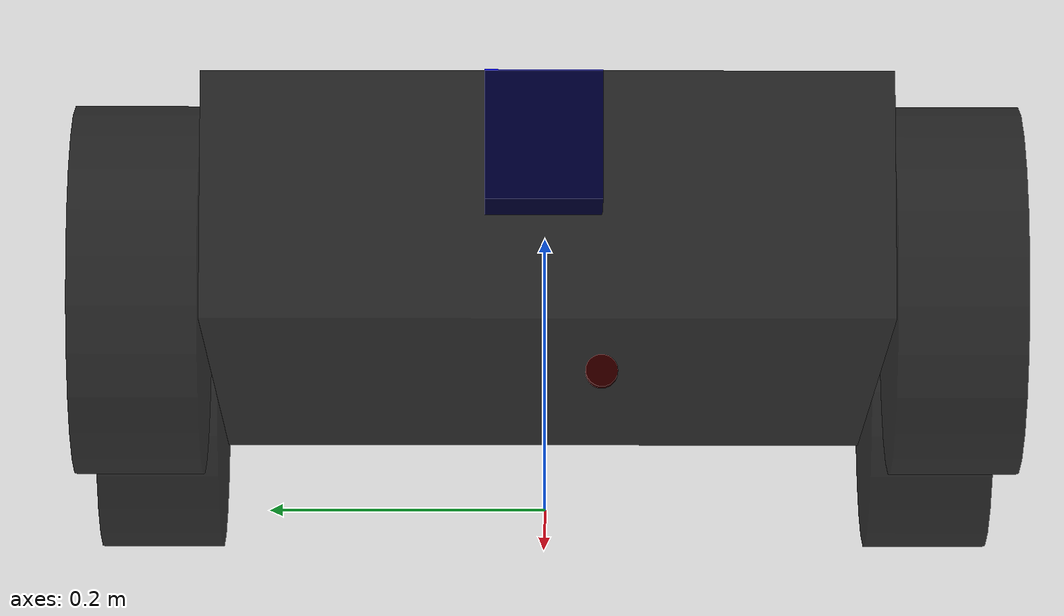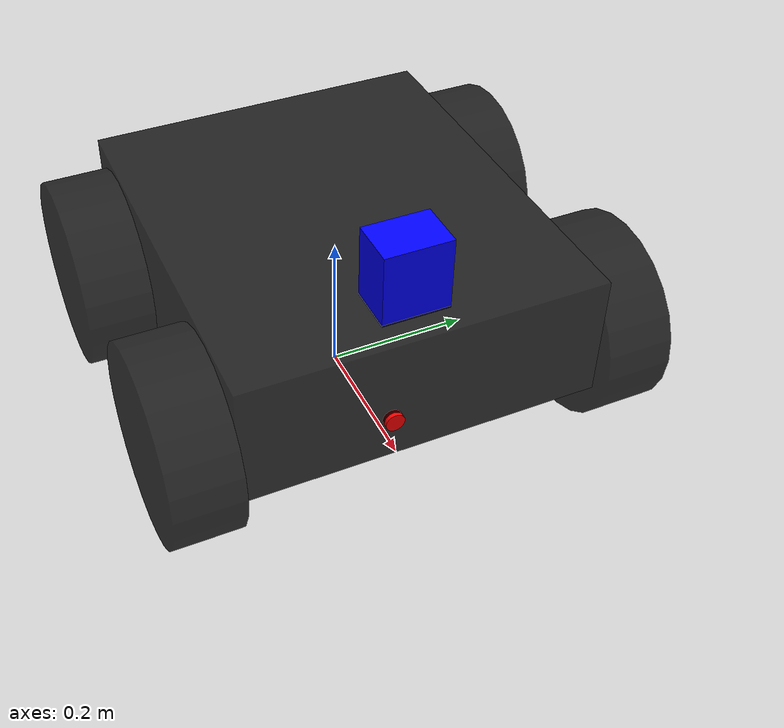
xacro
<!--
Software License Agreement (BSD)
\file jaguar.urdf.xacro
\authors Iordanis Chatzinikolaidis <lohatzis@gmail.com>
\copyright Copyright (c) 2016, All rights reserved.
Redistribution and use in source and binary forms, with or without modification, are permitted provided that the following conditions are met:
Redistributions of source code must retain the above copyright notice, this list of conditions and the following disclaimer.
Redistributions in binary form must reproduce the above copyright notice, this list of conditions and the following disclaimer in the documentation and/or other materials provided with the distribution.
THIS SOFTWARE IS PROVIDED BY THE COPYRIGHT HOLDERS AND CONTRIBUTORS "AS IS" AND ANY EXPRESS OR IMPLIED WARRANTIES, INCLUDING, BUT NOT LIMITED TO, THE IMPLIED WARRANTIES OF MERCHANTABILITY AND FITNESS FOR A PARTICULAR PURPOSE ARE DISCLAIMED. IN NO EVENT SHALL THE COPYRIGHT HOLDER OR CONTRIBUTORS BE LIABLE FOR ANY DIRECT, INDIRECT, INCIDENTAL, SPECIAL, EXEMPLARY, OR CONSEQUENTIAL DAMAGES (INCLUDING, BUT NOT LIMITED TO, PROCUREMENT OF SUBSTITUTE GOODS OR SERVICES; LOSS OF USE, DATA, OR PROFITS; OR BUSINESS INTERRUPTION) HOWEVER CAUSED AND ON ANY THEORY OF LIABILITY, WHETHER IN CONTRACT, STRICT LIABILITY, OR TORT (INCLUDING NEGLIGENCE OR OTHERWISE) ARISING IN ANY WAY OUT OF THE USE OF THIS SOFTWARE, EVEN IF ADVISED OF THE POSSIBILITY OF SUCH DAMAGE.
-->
<?xml version="1.0"?>
<robot name="jaguar_robot" xmlns:xacro="http://ros.org/wiki/xacro">
    <!-- Included URDF/XACRO Files -->
    <xacro:include filename="$(find jaguar_description)/urdf/wheel.urdf.xacro"/>

    <property name="M_PI" value="3.14159"/>

    <!-- Wheel Properties -->
    <xacro:property name="wheel_length" value="0.09"/>
    <xacro:property name="wheel_radius" value="0.13"/>

    <!-- Base Size -->
    <property name="distance_from_ground" value="0.09"/>
    <property name="wheel_base_offset" value="0.03"/>
    <property name="base_x_size" value="${0.615-2*wheel_base_offset}"/>
    <property name="base_y_size" value="${0.573-wheel_length}"/>
    <property name="base_z_size" value="${0.265-distance_from_ground}"/>

    <!-- Wheel Mounting Positions -->
    <xacro:property name="wheelbase" value="${base_x_size-2*wheel_radius+2*wheel_base_offset}"/>
    <xacro:property name="track" value="${base_y_size+wheel_length}"/>
    <xacro:property name="wheel_vertical_offset" value="${wheel_radius}"/>

    <!-- Laser Position -->
    <property name="laser_x" value="${base_x_size/2-0.0725}"/>
    <property name="laser_y" value="0"/>
    <property name="laser_z" value="${0.265+0.05}"/>

    <!-- Laser Size -->
    <property name="laser_x_size" value="0.065"/>
    <property name="laser_y_size" value="0.09"/>
    <property name="laser_z_size" value="0.1"/>

    <!-- Camera Position -->
    <property name="camera_x" value="${base_x_size/2}"/>
    <property name="camera_y" value="-0.045"/>
    <property name="camera_z" value="0.15"/>

    <!-- Camera Size -->
    <property name="camera_radius" value="${0.025/2}"/>
    <property name="camera_length" value="0.01"/>

    <!-- Base link is the center of the robot's bottom plate -->
    <link name="base_link">
        <visual>
            <origin xyz="0 0 ${2*distance_from_ground}" rpy="0 0 0"/>
            <geometry>
                <box size="${base_x_size} ${base_y_size} ${base_z_size}"/>
            </geometry>
            <material name="black">
                <color rgba="0 0 0 0.8"/>
            </material>
        </visual>
        <collision>
            <origin xyz="0 0 ${2*distance_from_ground}" rpy="0 0 0"/>
            <geometry>
                <box size="${base_x_size} ${base_y_size} ${base_z_size}"/>
            </geometry>
        </collision>
    </link>

    <!-- Interial link stores the robot's inertial information -->

    <!-- IMU exact position is unnecessary thus placed at the center of the platform.-->
    <link name="imu_link"/>
    <joint name="imu_joint" type="fixed">
        <origin xyz="0 0 ${base_z_size}" rpy="0 0 0"/>
        <parent link="base_link"/>
        <child link="imu_link"/>
    </joint>

    <!-- Jaguar wheel macros -->
    <xacro:jaguar_wheel wheel_prefix="front_left">
        <origin xyz="${wheelbase/2} ${track/2} ${wheel_vertical_offset}" rpy="0 0 0"/>
    </xacro:jaguar_wheel>
    <xacro:jaguar_wheel wheel_prefix="front_right">
        <origin xyz="${wheelbase/2} ${-track/2} ${wheel_vertical_offset}" rpy="0 0 ${M_PI}"/>
    </xacro:jaguar_wheel>
    <xacro:jaguar_wheel wheel_prefix="rear_left">
        <origin xyz="${-wheelbase/2} ${track/2} ${wheel_vertical_offset}" rpy="0 0 0"/>
    </xacro:jaguar_wheel>
    <xacro:jaguar_wheel wheel_prefix="rear_right">
        <origin xyz="${-wheelbase/2} ${-track/2} ${wheel_vertical_offset}" rpy="0 0 ${M_PI}"/>
    </xacro:jaguar_wheel>

    <!-- Laser -->
    <joint name="laser_joint" type="fixed">
        <origin xyz="${laser_x} ${laser_y} ${laser_z}" rpy="0 0 0"/>
        <parent link="base_link"/>
        <child link="laser_link"/>
    </joint>

    <link name="laser_link">
        <visual>
            <origin xyz="0 0 0" rpy="0 0 0"/>
            <geometry>
                <box size="${laser_x_size} ${laser_y_size} ${laser_z_size}"/>
            </geometry>
            <material name="blue">
                <color rgba="0 0 255 0.8"/>
            </material>
        </visual>
        <collision>
            <origin xyz="0 0 0" rpy="0 0 0"/>
            <geometry>
                <box size="${laser_x_size} ${laser_y_size} ${laser_z_size}"/>
            </geometry>
        </collision>
    </link>

    <!-- Camera -->
    <joint name="camera_joint" type="fixed">
        <origin xyz="${camera_x} ${camera_y} ${camera_z}" rpy="0 0 0"/>
        <parent link="base_link"/>
        <child link="camera_link"/>
    </joint>

    <link name="camera_link">
        <visual>
            <origin xyz="0 0 0" rpy="0 ${M_PI/2} 0"/>
            <geometry>
                <cylinder length="${camera_length}" radius="${camera_radius}"/>
            </geometry>
            <material name="red">
                <color rgba="255 0 0 1"/>
            </material>
        </visual>
        <collision>
            <origin xyz="0 0 0" rpy="0 ${M_PI/2} 0"/>
            <geometry>
                <cylinder length="0.1" radius="${0.025/2}"/>
            </geometry>
        </collision>
    </link>

    <!-- GPS exact position is unnecessary thus placed at the center of the platform. -->
    <joint name="gps_joint" type="fixed">
        <origin xyz="0 0 ${base_z_size}" rpy="0 0 0"/>
        <parent link="base_link"/>
        <child link="gps_link"/>
    </joint>

    <link name="gps_link"/>
</robot>

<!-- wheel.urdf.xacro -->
<robot name="jaguar_wheel" xmlns:xacro="http://ros.org/wiki/xacro">

	<xacro:macro name="jaguar_wheel" params="wheel_prefix *joint_pose">
		<link name="${wheel_prefix}_wheel_link">
			<inertial>
				<mass value="2.637" />  <!-- TODO -->
				<origin xyz="0 0 0" />
				<inertia  ixx="0.02467" ixy="0" ixz="0" iyy="0.02467" iyz="0" izz="0.04411" />  <!-- TODO -->
			</inertial>
			<visual>
				<origin xyz="0 0 0" rpy="${M_PI/2} 0 0" />
				<geometry>
					<cylinder length="${wheel_length}" radius="${wheel_radius}" />
				</geometry>
				<material name="black"/>
			</visual>
			<collision>
				<origin xyz="0 0 0" rpy="${M_PI/2} 0 0" />
				<geometry>
					<cylinder length="${wheel_length}" radius="${wheel_radius}" />
				</geometry>
			</collision>
		</link>

		<joint name="${wheel_prefix}_wheel" type="continuous">
			<parent link="base_link"/>
			<child link="${wheel_prefix}_wheel_link"/>
			<xacro:insert_block name="joint_pose"/>
			<axis xyz="0 1 0" rpy="0 0 0" />
		</joint>

		<transmission name="${wheel_prefix}_wheel_trans" type="SimpleTransmission">
			<type>transmission_interface/SimpleTransmission</type>
			<actuator name="${wheel_prefix}_wheel_motor">
				<mechanicalReduction>1</mechanicalReduction>
			</actuator>
			<joint name="${wheel_prefix}_wheel">
				<hardwareInterface>VelocityJointInterface</hardwareInterface>
			</joint>
		</transmission>

	</xacro:macro>
</robot>
